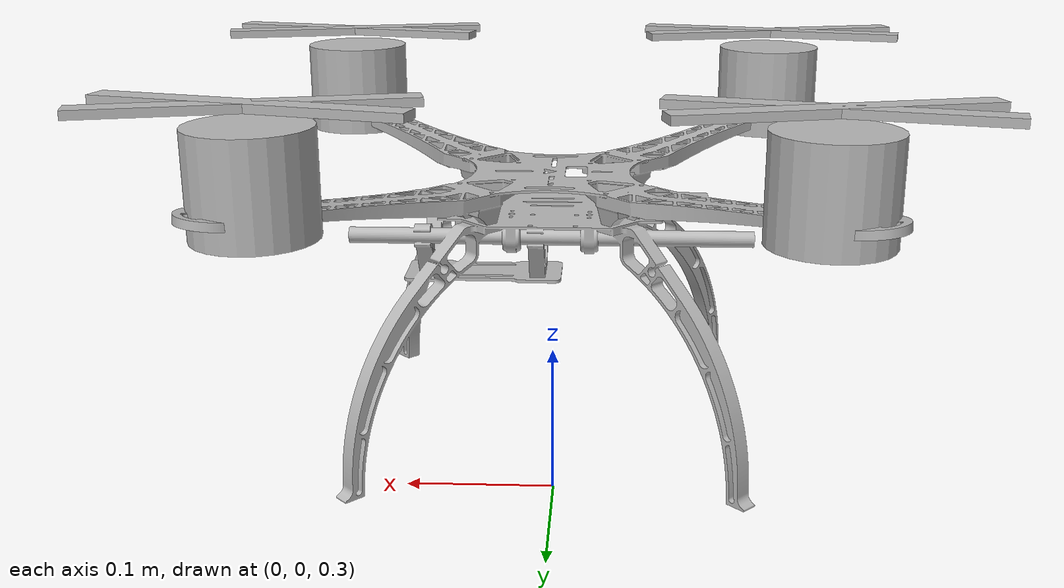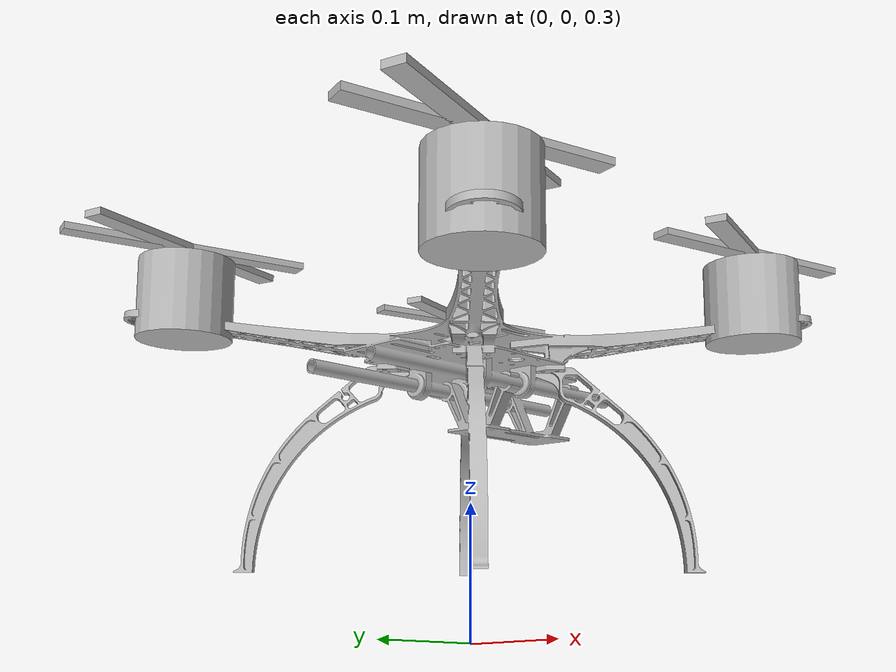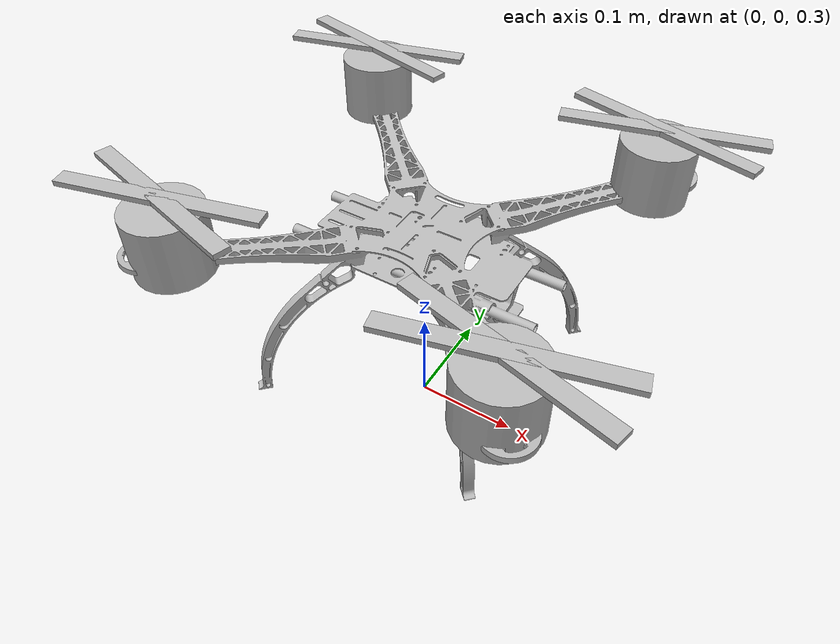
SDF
<?xml version="1.0" ?>
<sdf version="1.10">

  <model name="quadricoptero">

    <!-- Corpo físico principal -->
    <link name="base_link">

      <pose>0 0 0.5 0 0 0</pose>

      <inertial>
        <mass>1.5</mass>
        <inertia>
          <ixx>0.02</ixx>
          <iyy>0.02</iyy>
          <izz>0.03</izz>
          <ixy>0</ixy>
          <ixz>0</ixz>
          <iyz>0</iyz>
        </inertia>
      </inertial>

      <!-- Colisão simplificada -->
      <collision name="collision">
        <geometry>
          <box>
            <size>0.40 0.40 0.15</size>
          </box>
        </geometry>
      </collision>

      <!-- Modelo 3D do S500 vindo do Ansys -->
      <visual name="s500_visual">

        <geometry>
          <mesh>
            <uri>model://quadricoptero/meshes/S500_Frame.stl</uri>
            <scale>1 1 1</scale>
          </mesh>
        </geometry>

      </visual>
      <!-- MOTORES DO S500 - VISUAL -->

      <!-- Motor 1 -->
      <visual name="motor_1_visual">
        <pose>0.15 0.15 0.05 0 0 0</pose>
        <geometry>
          <cylinder>
            <radius>0.035</radius>
            <length>0.06</length>
          </cylinder>
        </geometry>
      </visual>

      <!-- Motor 2 -->
      <visual name="motor_2_visual">
        <pose>-0.15 0.15 0.05 0 0 0</pose>
        <geometry>
          <cylinder>
            <radius>0.035</radius>
            <length>0.06</length>
          </cylinder>
        </geometry>
      </visual>

      <!-- Motor 3 -->
      <visual name="motor_3_visual">
        <pose>-0.15 -0.15 0.05 0 0 0</pose>
        <geometry>
          <cylinder>
            <radius>0.035</radius>
            <length>0.06</length>
          </cylinder>
        </geometry>
      </visual>

      <!-- Motor 4 -->
      <visual name="motor_4_visual">
        <pose>0.15 -0.15 0.05 0 0 0</pose>
        <geometry>
          <cylinder>
            <radius>0.035</radius>
            <length>0.06</length>
          </cylinder>
        </geometry>
      </visual>
<!-- ==================== HÉLICES ==================== -->

<!-- Hélice do Motor 1 -->
<visual name="helice_1_a">
  <pose>0.15 0.15 0.09 0 0 0.25</pose>
  <geometry>
    <box>
      <size>0.18 0.015 0.005</size>
    </box>
  </geometry>
</visual>

<visual name="helice_1_b">
  <pose>0.15 0.15 0.09 0 0 -0.25</pose>
  <geometry>
    <box>
      <size>0.18 0.015 0.005</size>
    </box>
  </geometry>
</visual>

<!-- Hélice do Motor 2 -->
<visual name="helice_2_a">
  <pose>-0.15 0.15 0.09 0 0 -0.25</pose>
  <geometry>
    <box>
      <size>0.18 0.015 0.005</size>
    </box>
  </geometry>
</visual>

<visual name="helice_2_b">
  <pose>-0.15 0.15 0.09 0 0 0.25</pose>
  <geometry>
    <box>
      <size>0.18 0.015 0.005</size>
    </box>
  </geometry>
</visual>

<!-- Hélice do Motor 3 -->
<visual name="helice_3_a">
  <pose>-0.15 -0.15 0.09 0 0 0.25</pose>
  <geometry>
    <box>
      <size>0.18 0.015 0.005</size>
    </box>
  </geometry>
</visual>

<visual name="helice_3_b">
  <pose>-0.15 -0.15 0.09 0 0 -0.25</pose>
  <geometry>
    <box>
      <size>0.18 0.015 0.005</size>
    </box>
  </geometry>
</visual>

<!-- Hélice do Motor 4 -->
<visual name="helice_4_a">
  <pose>0.15 -0.15 0.09 0 0 -0.25</pose>
  <geometry>
    <box>
      <size>0.18 0.015 0.005</size>
    </box>
  </geometry>
</visual>

<visual name="helice_4_b">
  <pose>0.15 -0.15 0.09 0 0 0.25</pose>
  <geometry>
    <box>
      <size>0.18 0.015 0.005</size>
    </box>
  </geometry>
</visual>
    </link>

  </model>

</sdf>
